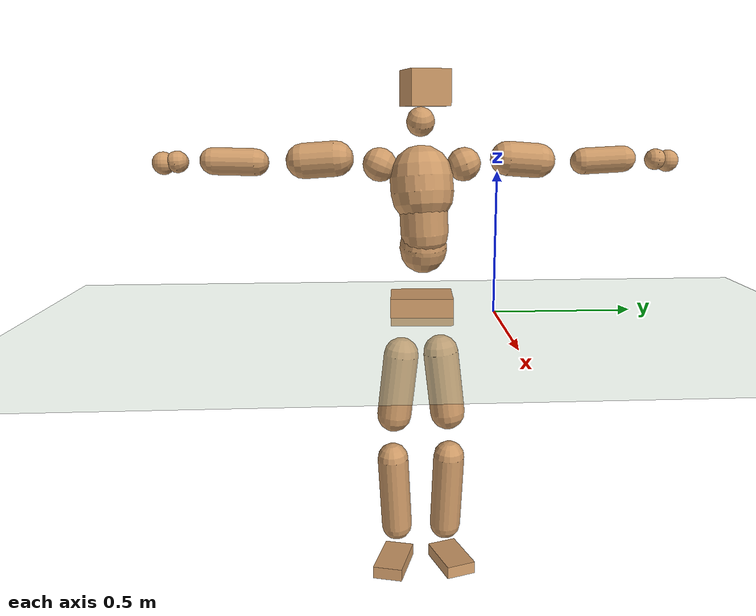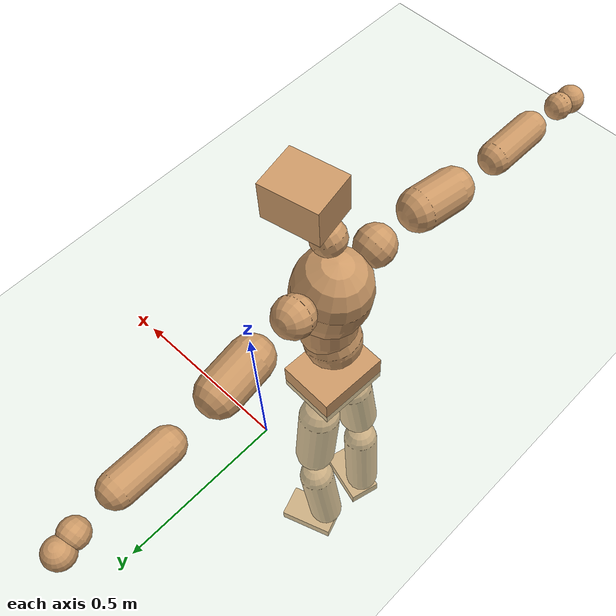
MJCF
<mujoco model="humanoid">
  <compiler coordinate="local" angle="radian"/>
  <default>
    <joint damping="0.0" armature="0.01" stiffness="0.0" limited="true"/>
    <geom conaffinity="1" condim="3" contype="7" margin="0.001" rgba="0.8 0.6 .4 1"/>
  </default>
  <asset>
    <texture type="skybox" builtin="gradient" rgb1=".4 .5 .6" rgb2="0 0 0" width="100" height="100"/>
    <texture builtin="flat" height="1278" mark="cross" markrgb="1 1 1" name="texgeom" random="0.01" rgb1="0.8 0.6 0.4" rgb2="0.8 0.6 0.4" type="cube" width="127"/>
    <texture builtin="checker" height="100" name="texplane" rgb1="0 0 0" rgb2="0.8 0.8 0.8" type="2d" width="100"/>
    <material name="MatPlane" reflectance="0.5" shininess="1" specular="1" texrepeat="60 60" texture="texplane"/>
    <material name="geom" texture="texgeom" texuniform="true"/>
  </asset>
  <worldbody>
    <light cutoff="100" diffuse="1 1 1" dir="-0 0 -1.3" directional="true" exponent="1" pos="0 0 1.3" specular=".1 .1 .1"/>
    <geom conaffinity="1" condim="3" name="floor" pos="0 0 0" rgba="0.8 0.9 0.8 1" size="100 100 .2" type="plane" material="MatPlane"/>
    <body name="Pelvis" pos="-0.0017 -0.2629 0.0264">
      <freejoint name="Pelvis"/>
      <geom type="box" contype="1" conaffinity="1" density="5359.374913" pos="-0.0126 0.0005 -0.0088" size="0.0888 0.1108 0.0484" quat="0.9998 0.0000 0.0000 -0.0215" name="Pelvis"/>
      <body name="L_Hip" pos="-0.0207 0.0616 -0.0886">
        <joint name="L_Hip_x" type="hinge" pos="0 0 0" axis="1 0 0" stiffness="1600" damping="160" armature="0.02" range="-180.0000 180.0000"/>
        <joint name="L_Hip_y" type="hinge" pos="0 0 0" axis="0 1 0" stiffness="1600" damping="160" armature="0.02" range="-180.0000 180.0000"/>
        <joint name="L_Hip_z" type="hinge" pos="0 0 0" axis="0 0 1" stiffness="1600" damping="160" armature="0.02" range="-180.0000 180.0000"/>
        <geom type="capsule" contype="1" conaffinity="1" density="2040.816327" size="0.0647" fromto="0.0016 0.0107 -0.0941 0.0055 0.0375 -0.3306" name="L_Hip"/>
        <body name="L_Knee" pos="0.0071 0.0481 -0.4247">
          <joint name="L_Knee_x" type="hinge" pos="0 0 0" axis="1 0 0" stiffness="1600" damping="160" armature="0.02" range="-180.0000 180.0000"/>
          <joint name="L_Knee_y" type="hinge" pos="0 0 0" axis="0 1 0" stiffness="1600" damping="160" armature="0.02" range="-180.0000 180.0000"/>
          <joint name="L_Knee_z" type="hinge" pos="0 0 0" axis="0 0 1" stiffness="1600" damping="160" armature="0.02" range="-180.0000 180.0000"/>
          <geom type="capsule" contype="1" conaffinity="1" density="1234.567901" size="0.0591" fromto="-0.0075 -0.0031 -0.0887 -0.0329 -0.0134 -0.3894" name="L_Knee"/>
          <body name="L_Ankle" pos="-0.0404 -0.0165 -0.4782">
            <joint name="L_Ankle_x" type="hinge" pos="0 0 0" axis="1 0 0" stiffness="1600" damping="160" armature="0.02" range="-180.0000 180.0000"/>
            <joint name="L_Ankle_y" type="hinge" pos="0 0 0" axis="0 1 0" stiffness="1600" damping="160" armature="0.02" range="-180.0000 180.0000"/>
            <joint name="L_Ankle_z" type="hinge" pos="0 0 0" axis="0 0 1" stiffness="1600" damping="160" armature="0.02" range="-180.0000 180.0000"/>
            <geom type="box" contype="1" conaffinity="1" density="999.999958" pos="0.0672 0.0229 -0.0338" size="0.0966 0.0567 0.0237" quat="0.9866 0.0000 0.0000 0.1633" name="L_Ankle"/>
            <body name="L_Toe" pos="0.1345 0.0458 -0.0676">
              <joint name="L_Toe_x" type="hinge" pos="0 0 0" axis="1 0 0" stiffness="1000" damping="100" armature="0.02" range="-180.0000 180.0000"/>
              <joint name="L_Toe_y" type="hinge" pos="0 0 0" axis="0 1 0" stiffness="1000" damping="100" armature="0.02" range="-180.0000 180.0000"/>
              <joint name="L_Toe_z" type="hinge" pos="0 0 0" axis="0 0 1" stiffness="1000" damping="100" armature="0.02" range="-180.0000 180.0000"/>
              <geom type="box" contype="1" conaffinity="1" density="8224122.765834" pos="0.0000 0.0000 0.0345" size="0.0011 0.0027 0.0012" quat="0.9859 0.0000 0.0000 0.1676" name="L_Toe"/>
            </body>
          </body>
        </body>
      </body>
      <body name="R_Hip" pos="-0.0176 -0.0632 -0.0968">
        <joint name="R_Hip_x" type="hinge" pos="0 0 0" axis="1 0 0" stiffness="1600" damping="160" armature="0.02" range="-180.0000 180.0000"/>
        <joint name="R_Hip_y" type="hinge" pos="0 0 0" axis="0 1 0" stiffness="1600" damping="160" armature="0.02" range="-180.0000 180.0000"/>
        <joint name="R_Hip_z" type="hinge" pos="0 0 0" axis="0 0 1" stiffness="1600" damping="160" armature="0.02" range="-180.0000 180.0000"/>
        <geom type="capsule" contype="1" conaffinity="1" density="2040.816327" size="0.0642" fromto="-0.0014 -0.0109 -0.0935 -0.0049 -0.0385 -0.3305" name="R_Hip"/>
        <body name="R_Knee" pos="-0.0063 -0.0494 -0.4241">
          <joint name="R_Knee_x" type="hinge" pos="0 0 0" axis="1 0 0" stiffness="1600" damping="160" armature="0.02" range="-180.0000 180.0000"/>
          <joint name="R_Knee_y" type="hinge" pos="0 0 0" axis="0 1 0" stiffness="1600" damping="160" armature="0.02" range="-180.0000 180.0000"/>
          <joint name="R_Knee_z" type="hinge" pos="0 0 0" axis="0 0 1" stiffness="1600" damping="160" armature="0.02" range="-180.0000 180.0000"/>
          <geom type="capsule" contype="1" conaffinity="1" density="1234.567901" size="0.059" fromto="-0.0068 0.0041 -0.0887 -0.0296 0.0177 -0.3842" name="R_Knee"/>
          <body name="R_Ankle" pos="-0.0365 0.0218 -0.4728">
            <joint name="R_Ankle_x" type="hinge" pos="0 0 0" axis="1 0 0" stiffness="1600" damping="160" armature="0.02" range="-180.0000 180.0000"/>
            <joint name="R_Ankle_y" type="hinge" pos="0 0 0" axis="0 1 0" stiffness="1600" damping="160" armature="0.02" range="-180.0000 180.0000"/>
            <joint name="R_Ankle_z" type="hinge" pos="0 0 0" axis="0 0 1" stiffness="1600" damping="160" armature="0.02" range="-180.0000 180.0000"/>
            <geom type="box" contype="1" conaffinity="1" density="999.999982" pos="0.0718 -0.0200 -0.0355" size="0.0994 0.056 0.024" quat="0.9908 0.0000 0.0000 -0.1355" name="R_Ankle"/>
            <body name="R_Toe" pos="0.1436 -0.04 -0.0711">
              <joint name="R_Toe_x" type="hinge" pos="0 0 0" axis="1 0 0" stiffness="1000" damping="100" armature="0.02" range="-180.0000 180.0000"/>
              <joint name="R_Toe_y" type="hinge" pos="0 0 0" axis="0 1 0" stiffness="1000" damping="100" armature="0.02" range="-180.0000 180.0000"/>
              <joint name="R_Toe_z" type="hinge" pos="0 0 0" axis="0 0 1" stiffness="1000" damping="100" armature="0.02" range="-180.0000 180.0000"/>
              <geom type="box" contype="1" conaffinity="1" density="8271494.869231" pos="0.0000 0.0000 0.0366" size="0.0012 0.0027 0.0013" quat="0.9919 0.0000 0.0000 -0.1273" name="R_Toe"/>
            </body>
          </body>
        </body>
      </body>
      <body name="Torso" pos="-0.0376 0.0049 0.1324">
        <joint name="Torso_x" type="hinge" pos="0 0 0" axis="1 0 0" stiffness="2000" damping="200" armature="0.02" range="-180.0000 180.0000"/>
        <joint name="Torso_y" type="hinge" pos="0 0 0" axis="0 1 0" stiffness="2000" damping="200" armature="0.02" range="-180.0000 180.0000"/>
        <joint name="Torso_z" type="hinge" pos="0 0 0" axis="0 0 1" stiffness="2000" damping="200" armature="0.02" range="-180.0000 180.0000"/>
        <geom type="capsule" contype="1" conaffinity="1" density="2040.816327" size="0.0841" fromto="0.0168 0.0026 0.0824 0.0137 0.0022 0.0673" name="Torso"/>
        <body name="Spine" pos="0.0306 0.0048 0.1497">
          <joint name="Spine_x" type="hinge" pos="0 0 0" axis="1 0 0" stiffness="2000" damping="200" armature="0.02" range="-180.0000 180.0000"/>
          <joint name="Spine_y" type="hinge" pos="0 0 0" axis="0 1 0" stiffness="2000" damping="200" armature="0.02" range="-180.0000 180.0000"/>
          <joint name="Spine_z" type="hinge" pos="0 0 0" axis="0 0 1" stiffness="2000" damping="200" armature="0.02" range="-180.0000 180.0000"/>
          <geom type="capsule" contype="1" conaffinity="1" density="2040.816327" size="0.0844" fromto="0.0028 -0.0042 0.0842 -0.0007 0.0011 -0.0225" name="Spine"/>
          <body name="Chest" pos="0.002 -0.0031 0.0617">
            <joint name="Chest_x" type="hinge" pos="0 0 0" axis="1 0 0" stiffness="2000" damping="200" armature="0.02" range="-180.0000 180.0000"/>
            <joint name="Chest_y" type="hinge" pos="0 0 0" axis="0 1 0" stiffness="2000" damping="200" armature="0.02" range="-180.0000 180.0000"/>
            <joint name="Chest_z" type="hinge" pos="0 0 0" axis="0 0 1" stiffness="2000" damping="200" armature="0.02" range="-180.0000 180.0000"/>
            <geom type="capsule" contype="1" conaffinity="1" density="2040.816327" size="0.1107" fromto="-0.0170 -0.0060 0.1092 -0.0087 -0.0031 0.0559" name="Chest"/>
            <body name="Neck" pos="-0.032 -0.0151 0.2426">
              <joint name="Neck_x" type="hinge" pos="0 0 0" axis="1 0 0" stiffness="1000" damping="100" armature="0.02" range="-180.0000 180.0000"/>
              <joint name="Neck_y" type="hinge" pos="0 0 0" axis="0 1 0" stiffness="1000" damping="100" armature="0.02" range="-180.0000 180.0000"/>
              <joint name="Neck_z" type="hinge" pos="0 0 0" axis="0 0 1" stiffness="1000" damping="100" armature="0.02" range="-180.0000 180.0000"/>
              <geom type="capsule" contype="1" conaffinity="1" density="1000" size="0.0488" fromto="0.0291 0.0050 0.0525 0.0301 0.0051 0.0542" name="Neck"/>
              <body name="Head" pos="0.0592 0.0101 0.1067">
                <joint name="Head_x" type="hinge" pos="0 0 0" axis="1 0 0" stiffness="1000" damping="100" armature="0.02" range="-180.0000 180.0000"/>
                <joint name="Head_y" type="hinge" pos="0 0 0" axis="0 1 0" stiffness="1000" damping="100" armature="0.02" range="-180.0000 180.0000"/>
                <joint name="Head_z" type="hinge" pos="0 0 0" axis="0 0 1" stiffness="1000" damping="100" armature="0.02" range="-180.0000 180.0000"/>
                <geom type="box" contype="1" conaffinity="1" density="2249.9999" pos="0.0306 0.0060 0.0544" size="0.0831 0.0666 0.0579" quat="0.9953 0.0000 0.0000 0.0973" name="Head"/>
              </body>
            </body>
            <body name="L_Thorax" pos="-0.0201 0.0779 0.1272">
              <joint name="L_Thorax_x" type="hinge" pos="0 0 0" axis="1 0 0" stiffness="1000" damping="100" armature="0.02" range="-180.0000 180.0000"/>
              <joint name="L_Thorax_y" type="hinge" pos="0 0 0" axis="0 1 0" stiffness="1000" damping="100" armature="0.02" range="-180.0000 180.0000"/>
              <joint name="L_Thorax_z" type="hinge" pos="0 0 0" axis="0 0 1" stiffness="1000" damping="100" armature="0.02" range="-180.0000 180.0000"/>
              <geom type="capsule" contype="1" conaffinity="1" density="1000" size="0.0582" fromto="-0.0101 0.0647 0.0249 -0.0103 0.0666 0.0256" name="L_Thorax"/>
              <body name="L_Shoulder" pos="-0.0204 0.1313 0.0506">
                <joint name="L_Shoulder_x" type="hinge" pos="0 0 0" axis="1 0 0" stiffness="1000" damping="100" armature="0.02" range="-720.0000 720.0000"/>
                <joint name="L_Shoulder_y" type="hinge" pos="0 0 0" axis="0 1 0" stiffness="1000" damping="100" armature="0.02" range="-720.0000 720.0000"/>
                <joint name="L_Shoulder_z" type="hinge" pos="0 0 0" axis="0 0 1" stiffness="1000" damping="100" armature="0.02" range="-720.0000 720.0000"/>
                <geom type="capsule" contype="1" conaffinity="1" density="1000" size="0.06" fromto="-0.0077 0.0894 -0.0067 -0.0175 0.2020 -0.0152" name="L_Shoulder"/>
                <body name="L_Elbow" pos="-0.0252 0.2914 -0.0219">
                  <joint name="L_Elbow_x" type="hinge" pos="0 0 0" axis="1 0 0" stiffness="1000" damping="100" armature="0.02" range="-720.0000 720.0000"/>
                  <joint name="L_Elbow_y" type="hinge" pos="0 0 0" axis="0 1 0" stiffness="1000" damping="100" armature="0.02" range="-720.0000 720.0000"/>
                  <joint name="L_Elbow_z" type="hinge" pos="0 0 0" axis="0 0 1" stiffness="1000" damping="100" armature="0.02" range="-720.0000 720.0000"/>
                  <geom type="capsule" contype="1" conaffinity="1" density="1000" size="0.0462" fromto="-0.0017 0.0761 0.0039 -0.0048 0.2187 0.0112" name="L_Elbow"/>
                  <body name="L_Wrist" pos="-0.0064 0.2948 0.015">
                    <joint name="L_Wrist_x" type="hinge" pos="0 0 0" axis="1 0 0" stiffness="600" damping="60" armature="0.02" range="-180.0000 180.0000"/>
                    <joint name="L_Wrist_y" type="hinge" pos="0 0 0" axis="0 1 0" stiffness="600" damping="60" armature="0.02" range="-180.0000 180.0000"/>
                    <joint name="L_Wrist_z" type="hinge" pos="0 0 0" axis="0 0 1" stiffness="600" damping="60" armature="0.02" range="-180.0000 180.0000"/>
                    <geom type="capsule" contype="1" conaffinity="1" density="1000" size="0.0374" fromto="-0.0085 0.0466 -0.0057 -0.0088 0.0486 -0.0059" name="L_Wrist"/>
                    <body name="L_Hand" pos="-0.0173 0.0952 -0.0116">
                      <joint name="L_Hand_x" type="hinge" pos="0 0 0" axis="1 0 0" stiffness="600" damping="60" armature="0.02" range="-180.0000 180.0000"/>
                      <joint name="L_Hand_y" type="hinge" pos="0 0 0" axis="0 1 0" stiffness="600" damping="60" armature="0.02" range="-180.0000 180.0000"/>
                      <joint name="L_Hand_z" type="hinge" pos="0 0 0" axis="0 0 1" stiffness="600" damping="60" armature="0.02" range="-180.0000 180.0000"/>
                      <geom type="sphere" contype="1" conaffinity="1" density="1000" size="0.0391" pos="0.0000 0.0000 0.0000" name="L_Hand"/>
                    </body>
                  </body>
                </body>
              </body>
            </body>
            <body name="R_Thorax" pos="-0.025 -0.0898 0.1256">
              <joint name="R_Thorax_x" type="hinge" pos="0 0 0" axis="1 0 0" stiffness="1000" damping="100" armature="0.02" range="-180.0000 180.0000"/>
              <joint name="R_Thorax_y" type="hinge" pos="0 0 0" axis="0 1 0" stiffness="1000" damping="100" armature="0.02" range="-180.0000 180.0000"/>
              <joint name="R_Thorax_z" type="hinge" pos="0 0 0" axis="0 0 1" stiffness="1000" damping="100" armature="0.02" range="-180.0000 180.0000"/>
              <geom type="capsule" contype="1" conaffinity="1" density="1000" size="0.0583" fromto="-0.0040 -0.0599 0.0263 -0.0041 -0.0617 0.0271" name="R_Thorax"/>
              <body name="R_Shoulder" pos="-0.0081 -0.1216 0.0533">
                <joint name="R_Shoulder_x" type="hinge" pos="0 0 0" axis="1 0 0" stiffness="1000" damping="100" armature="0.02" range="-720.0000 720.0000"/>
                <joint name="R_Shoulder_y" type="hinge" pos="0 0 0" axis="0 1 0" stiffness="1000" damping="100" armature="0.02" range="-720.0000 720.0000"/>
                <joint name="R_Shoulder_z" type="hinge" pos="0 0 0" axis="0 0 1" stiffness="1000" damping="100" armature="0.02" range="-720.0000 720.0000"/>
                <geom type="capsule" contype="1" conaffinity="1" density="1000" size="0.0613" fromto="-0.0106 -0.0904 -0.0066 -0.0240 -0.2041 -0.0149" name="R_Shoulder"/>
                <body name="R_Elbow" pos="-0.0347 -0.2945 -0.0215">
                  <joint name="R_Elbow_x" type="hinge" pos="0 0 0" axis="1 0 0" stiffness="1000" damping="100" armature="0.02" range="-720.0000 720.0000"/>
                  <joint name="R_Elbow_y" type="hinge" pos="0 0 0" axis="0 1 0" stiffness="1000" damping="100" armature="0.02" range="-720.0000 720.0000"/>
                  <joint name="R_Elbow_z" type="hinge" pos="0 0 0" axis="0 0 1" stiffness="1000" damping="100" armature="0.02" range="-720.0000 720.0000"/>
                  <geom type="capsule" contype="1" conaffinity="1" density="1000" size="0.0471" fromto="-0.0016 -0.0771 0.0022 -0.0046 -0.2222 0.0062" name="R_Elbow"/>
                  <body name="R_Wrist" pos="-0.0062 -0.2992 0.0084">
                    <joint name="R_Wrist_x" type="hinge" pos="0 0 0" axis="1 0 0" stiffness="600" damping="60" armature="0.02" range="-180.0000 180.0000"/>
                    <joint name="R_Wrist_y" type="hinge" pos="0 0 0" axis="0 1 0" stiffness="600" damping="60" armature="0.02" range="-180.0000 180.0000"/>
                    <joint name="R_Wrist_z" type="hinge" pos="0 0 0" axis="0 0 1" stiffness="600" damping="60" armature="0.02" range="-180.0000 180.0000"/>
                    <geom type="capsule" contype="1" conaffinity="1" density="1000" size="0.038" fromto="-0.0054 -0.0475 -0.0046 -0.0056 -0.0495 -0.0048" name="R_Wrist"/>
                    <body name="R_Hand" pos="-0.011 -0.0971 -0.0094">
                      <joint name="R_Hand_x" type="hinge" pos="0 0 0" axis="1 0 0" stiffness="600" damping="60" armature="0.02" range="-180.0000 180.0000"/>
                      <joint name="R_Hand_y" type="hinge" pos="0 0 0" axis="0 1 0" stiffness="600" damping="60" armature="0.02" range="-180.0000 180.0000"/>
                      <joint name="R_Hand_z" type="hinge" pos="0 0 0" axis="0 0 1" stiffness="600" damping="60" armature="0.02" range="-180.0000 180.0000"/>
                      <geom type="sphere" contype="1" conaffinity="1" density="1000" size="0.0395" pos="0.0000 0.0000 0.0000" name="R_Hand"/>
                    </body>
                  </body>
                </body>
              </body>
            </body>
          </body>
        </body>
      </body>
    </body>
  </worldbody>
  <actuator>
    <motor name="L_Hip_x" joint="L_Hip_x" gear="500"/>
    <motor name="L_Hip_y" joint="L_Hip_y" gear="500"/>
    <motor name="L_Hip_z" joint="L_Hip_z" gear="500"/>
    <motor name="L_Knee_x" joint="L_Knee_x" gear="500"/>
    <motor name="L_Knee_y" joint="L_Knee_y" gear="500"/>
    <motor name="L_Knee_z" joint="L_Knee_z" gear="500"/>
    <motor name="L_Ankle_x" joint="L_Ankle_x" gear="500"/>
    <motor name="L_Ankle_y" joint="L_Ankle_y" gear="500"/>
    <motor name="L_Ankle_z" joint="L_Ankle_z" gear="500"/>
    <motor name="L_Toe_x" joint="L_Toe_x" gear="500"/>
    <motor name="L_Toe_y" joint="L_Toe_y" gear="500"/>
    <motor name="L_Toe_z" joint="L_Toe_z" gear="500"/>
    <motor name="R_Hip_x" joint="R_Hip_x" gear="500"/>
    <motor name="R_Hip_y" joint="R_Hip_y" gear="500"/>
    <motor name="R_Hip_z" joint="R_Hip_z" gear="500"/>
    <motor name="R_Knee_x" joint="R_Knee_x" gear="500"/>
    <motor name="R_Knee_y" joint="R_Knee_y" gear="500"/>
    <motor name="R_Knee_z" joint="R_Knee_z" gear="500"/>
    <motor name="R_Ankle_x" joint="R_Ankle_x" gear="500"/>
    <motor name="R_Ankle_y" joint="R_Ankle_y" gear="500"/>
    <motor name="R_Ankle_z" joint="R_Ankle_z" gear="500"/>
    <motor name="R_Toe_x" joint="R_Toe_x" gear="500"/>
    <motor name="R_Toe_y" joint="R_Toe_y" gear="500"/>
    <motor name="R_Toe_z" joint="R_Toe_z" gear="500"/>
    <motor name="Torso_x" joint="Torso_x" gear="500"/>
    <motor name="Torso_y" joint="Torso_y" gear="500"/>
    <motor name="Torso_z" joint="Torso_z" gear="500"/>
    <motor name="Spine_x" joint="Spine_x" gear="500"/>
    <motor name="Spine_y" joint="Spine_y" gear="500"/>
    <motor name="Spine_z" joint="Spine_z" gear="500"/>
    <motor name="Chest_x" joint="Chest_x" gear="500"/>
    <motor name="Chest_y" joint="Chest_y" gear="500"/>
    <motor name="Chest_z" joint="Chest_z" gear="500"/>
    <motor name="Neck_x" joint="Neck_x" gear="500"/>
    <motor name="Neck_y" joint="Neck_y" gear="500"/>
    <motor name="Neck_z" joint="Neck_z" gear="500"/>
    <motor name="Head_x" joint="Head_x" gear="500"/>
    <motor name="Head_y" joint="Head_y" gear="500"/>
    <motor name="Head_z" joint="Head_z" gear="500"/>
    <motor name="L_Thorax_x" joint="L_Thorax_x" gear="500"/>
    <motor name="L_Thorax_y" joint="L_Thorax_y" gear="500"/>
    <motor name="L_Thorax_z" joint="L_Thorax_z" gear="500"/>
    <motor name="L_Shoulder_x" joint="L_Shoulder_x" gear="500"/>
    <motor name="L_Shoulder_y" joint="L_Shoulder_y" gear="500"/>
    <motor name="L_Shoulder_z" joint="L_Shoulder_z" gear="500"/>
    <motor name="L_Elbow_x" joint="L_Elbow_x" gear="500"/>
    <motor name="L_Elbow_y" joint="L_Elbow_y" gear="500"/>
    <motor name="L_Elbow_z" joint="L_Elbow_z" gear="500"/>
    <motor name="L_Wrist_x" joint="L_Wrist_x" gear="500"/>
    <motor name="L_Wrist_y" joint="L_Wrist_y" gear="500"/>
    <motor name="L_Wrist_z" joint="L_Wrist_z" gear="500"/>
    <motor name="L_Hand_x" joint="L_Hand_x" gear="500"/>
    <motor name="L_Hand_y" joint="L_Hand_y" gear="500"/>
    <motor name="L_Hand_z" joint="L_Hand_z" gear="500"/>
    <motor name="R_Thorax_x" joint="R_Thorax_x" gear="500"/>
    <motor name="R_Thorax_y" joint="R_Thorax_y" gear="500"/>
    <motor name="R_Thorax_z" joint="R_Thorax_z" gear="500"/>
    <motor name="R_Shoulder_x" joint="R_Shoulder_x" gear="500"/>
    <motor name="R_Shoulder_y" joint="R_Shoulder_y" gear="500"/>
    <motor name="R_Shoulder_z" joint="R_Shoulder_z" gear="500"/>
    <motor name="R_Elbow_x" joint="R_Elbow_x" gear="500"/>
    <motor name="R_Elbow_y" joint="R_Elbow_y" gear="500"/>
    <motor name="R_Elbow_z" joint="R_Elbow_z" gear="500"/>
    <motor name="R_Wrist_x" joint="R_Wrist_x" gear="500"/>
    <motor name="R_Wrist_y" joint="R_Wrist_y" gear="500"/>
    <motor name="R_Wrist_z" joint="R_Wrist_z" gear="500"/>
    <motor name="R_Hand_x" joint="R_Hand_x" gear="500"/>
    <motor name="R_Hand_y" joint="R_Hand_y" gear="500"/>
    <motor name="R_Hand_z" joint="R_Hand_z" gear="500"/>
  </actuator>
  <contact>
    <exclude body1="Torso" body2="Chest"/>
    <exclude body1="Head" body2="Chest"/>
    <exclude body1="R_Knee" body2="R_Toe"/>
    <exclude body1="R_Knee" body2="L_Ankle"/>
    <exclude body1="R_Knee" body2="L_Toe"/>
    <exclude body1="L_Knee" body2="L_Toe"/>
    <exclude body1="L_Knee" body2="R_Ankle"/>
    <exclude body1="L_Knee" body2="R_Toe"/>
    <exclude body1="L_Shoulder" body2="Chest"/>
    <exclude body1="R_Shoulder" body2="Chest"/>
  </contact>
  <sensor/>
  <size njmax="700" nconmax="700"/>
</mujoco>
